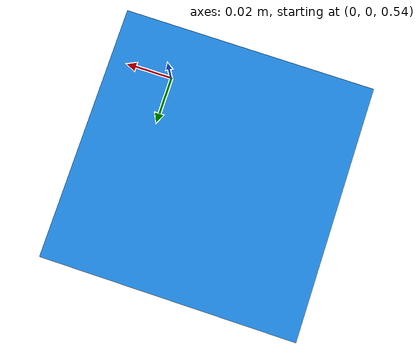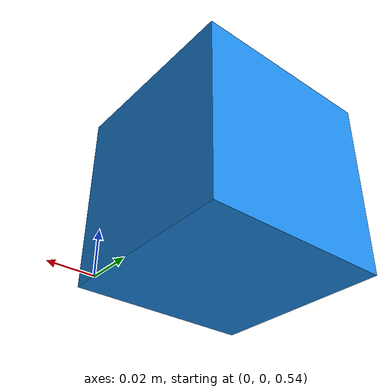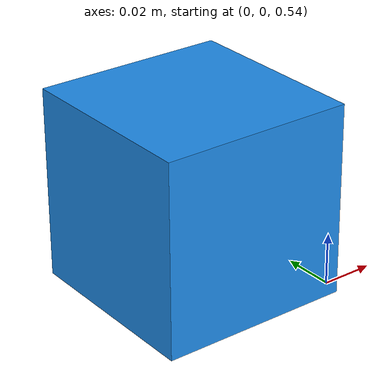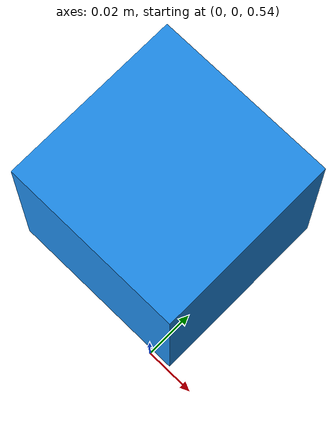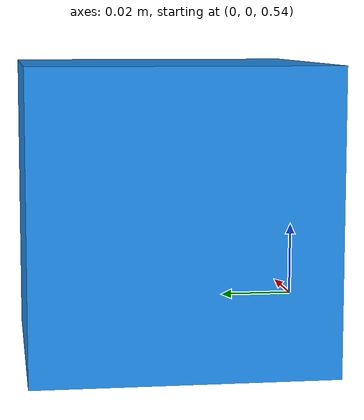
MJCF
<mujoco model="leap_hand_cube">
  <asset>
    <material name="leap_cube_material" rgba="0.12 0.55 0.92 1"/>
  </asset>

  <worldbody>
    <body name="leap_object" pos="-0.03 0.04 0.57">
      <freejoint name="leap_object_joint"/>
      <inertial pos="0 0 0" mass="0.05" diaginertia="4.6875e-05 4.6875e-05 4.6875e-05"/>
      <geom name="leap_object_col" type="box" size="0.0375 0.0375 0.0375"
            mass="0.05" material="leap_cube_material" condim="6"
            friction="2.0 0.05 0.01" solimp="0.9 0.95 0.001" solref="0.02 1"/>
    </body>
  </worldbody>
</mujoco>
